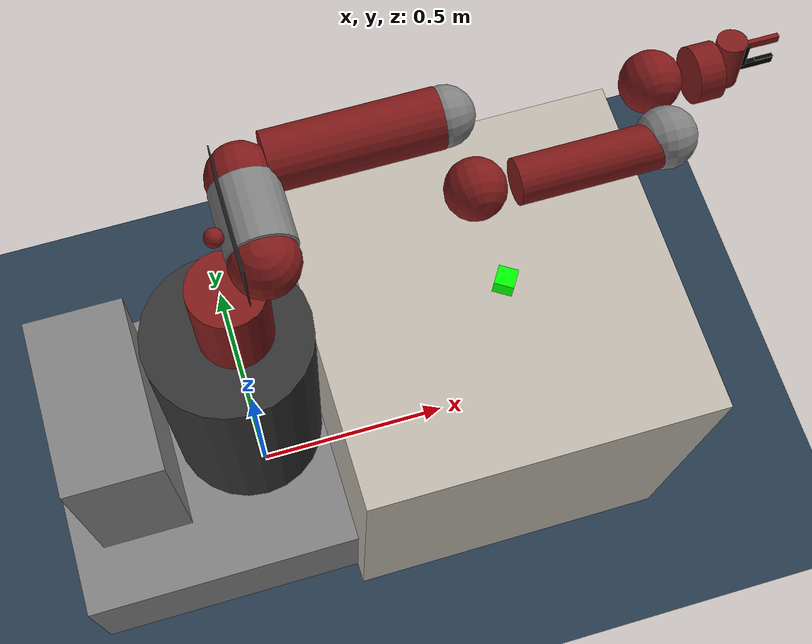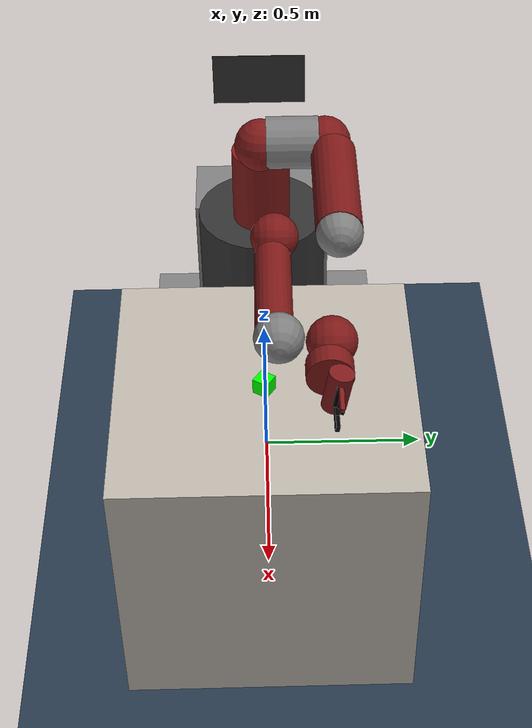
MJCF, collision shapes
<mujoco model="base">
    <compiler angle="radian" meshdir="meshes/" />
    <option impratio="20" cone="elliptic" />
    <size njmax="5000" nconmax="5000" />
    <asset>
        <texture type="skybox" builtin="gradient" rgb1="0.9 0.9 1" rgb2="0.2 0.3 0.4" width="256" height="1536" />
        <texture type="2d" name="texplane" builtin="checker" rgb1="0.2 0.3 0.4" rgb2="0.1 0.15 0.2" width="512" height="512" />
        <texture type="2d" name="tex-lego" file="{base}/mujoco/assets/arenas/../textures/lego.png" />
        <material name="floorplane" texture="texplane" texuniform="true" reflectance="0.5" />
        <material name="lego" texture="tex-lego" texuniform="true" texrepeat="10 10" reflectance="0.7" />
        <mesh name="pedestal" file="{base}/mujoco/assets/robots/sawyer/meshes/pedestal.stl" />
        <mesh name="base" file="{base}/mujoco/assets/robots/sawyer/meshes/base.stl" />
        <mesh name="l0" file="{base}/mujoco/assets/robots/sawyer/meshes/l0.stl" />
        <mesh name="head" file="{base}/mujoco/assets/robots/sawyer/meshes/head.stl" />
        <mesh name="l1" file="{base}/mujoco/assets/robots/sawyer/meshes/l1.stl" />
        <mesh name="l2" file="{base}/mujoco/assets/robots/sawyer/meshes/l2.stl" />
        <mesh name="l3" file="{base}/mujoco/assets/robots/sawyer/meshes/l3.stl" />
        <mesh name="l4" file="{base}/mujoco/assets/robots/sawyer/meshes/l4.stl" />
        <mesh name="l5" file="{base}/mujoco/assets/robots/sawyer/meshes/l5.stl" />
        <mesh name="l6" file="{base}/mujoco/assets/robots/sawyer/meshes/l6.stl" />
        <mesh name="electric_gripper_base" file="{base}/mujoco/assets/grippers/meshes/two_finger_gripper/electric_gripper_base.STL" />
        <mesh name="standard_narrow" file="{base}/mujoco/assets/grippers/meshes/two_finger_gripper/standard_narrow.STL" />
        <mesh name="half_round_tip" file="{base}/mujoco/assets/grippers/meshes/two_finger_gripper/half_round_tip.STL" />
    </asset>
    <worldbody>
        <geom name="floor" size="3 3 0.125" pos="0.56 0 0" type="plane" material="floorplane" />
        <camera name="frontview" pos="2.16 0 1.45" quat="0.56 0.43 0.43 0.56" />
        <camera name="birdview" pos="0.36 0 3" quat="0.7071 0 0 0.7071" />
        <camera name="agentview" pos="1.06 0 1.35" quat="0.653 0.271 0.271 0.653" />
        <light pos="1.56 1 4" dir="0 -0.14834 -0.988936" castshadow="false" diffuse="0.8 0.8 0.8" />
        <light pos="-2.44 -3 4" dir="0 -0.14834 -0.988936" castshadow="false" diffuse="0.8 0.8 0.8" />
        <body name="table" pos="0.56 0 0.4">
            <inertial pos="0 0 0" mass="1024" diaginertia="109.227 109.227 109.227" />
            <geom name="table_collision" size="0.4 0.4 0.4" type="box" material="lego" />
            <geom name="table_visual" size="0.4 0.4 0.4" type="box" contype="0" conaffinity="0" group="1" material="lego" />
            <site name="table_top" pos="0 0 0.4" size="0.001" rgba="0 0 0 0" />
        </body>
        <body name="base" pos="0 0 0.913">
            <inertial pos="0 0 0" mass="0" diaginertia="0 0 0" />
            <body name="controller_box" pos="0 0 0">
                <inertial pos="-0.325 0 -0.38" mass="46.64" diaginertia="1.71363 1.27988 0.809981" />
                <geom size="0.11 0.2 0.265" pos="-0.325 0 -0.38" type="box" />
            </body>
            <body name="pedestal_feet" pos="0 0 0">
                <inertial pos="-0.1225 0 -0.758" mass="167.09" diaginertia="8.16095 9.59375 15.0785" />
                <geom size="0.385 0.35 0.155" pos="-0.1225 0 -0.758" type="box" />
            </body>
            <body name="torso" pos="0 0 0">
                <inertial pos="0 0 0" mass="0.0001" diaginertia="1e-08 1e-08 1e-08" />
                <geom size="0.05 0.05 0.05" type="box" contype="0" conaffinity="0" group="1" rgba="0.2 0.2 0.2 1" />
            </body>
            <body name="pedestal" pos="0 0 0">
                <inertial pos="0 0 0" quat="0.659267 -0.259505 -0.260945 0.655692" mass="60.864" diaginertia="6.0869 5.81635 4.20915" />
                <geom pos="0.26 0.345 -0.91488" quat="0.5 0.5 -0.5 -0.5" type="mesh" contype="0" conaffinity="0" group="1" rgba="0.2 0.2 0.2 1" mesh="pedestal" />
                <geom size="0.18 0.31" pos="-0.02 0 -0.29" type="cylinder" rgba="0.2 0.2 0.2 1" />
            </body>
            <body name="right_arm_base_link" pos="0 0 0">
                <inertial pos="-0.0006241 -2.8025e-05 0.065404" quat="-0.209285 0.674441 0.227335 0.670558" mass="2.0687" diaginertia="0.00740351 0.00681776 0.00672942" />
                <geom type="mesh" contype="0" conaffinity="0" group="1" rgba="0.5 0.1 0.1 1" mesh="base" />
                <geom size="0.08 0.12" pos="0 0 0.12" type="cylinder" rgba="0.5 0.1 0.1 1" />
                <body name="right_l0" pos="0 0 0.08">
                    <inertial pos="0.024366 0.010969 0.14363" quat="0.894823 0.00899958 -0.170275 0.412573" mass="5.3213" diaginertia="0.0651588 0.0510944 0.0186218" />
                    <joint name="right_j0" pos="0 0 0" axis="0 0 1" limited="true" range="-3.0503 3.0503" />
                    <geom type="mesh" contype="0" conaffinity="0" group="1" rgba="0.5 0.1 0.1 1" mesh="l0" />
                    <geom size="0.07" pos="0.08 0 0.23" rgba="0.5 0.1 0.1 1" />
                    <body name="head" pos="0 0 0.2965">
                        <inertial pos="0.0053207 -2.6549e-05 0.1021" quat="0.999993 7.08405e-05 -0.00359857 -0.000626247" mass="1.5795" diaginertia="0.0118334 0.00827089 0.00496574" />
                        <joint name="head_pan" pos="0 0 0" axis="0 0 1" limited="true" range="-5.0952 0.9064" />
                        <geom type="mesh" contype="0" conaffinity="0" group="1" rgba="0.5 0.1 0.1 1" mesh="head" />
                        <geom size="0.018" pos="0 0 0.08" rgba="0.5 0.1 0.1 1" />
                        <body name="screen" pos="0.03 0 0.105" quat="0.5 0.5 0.5 0.5">
                            <inertial pos="0 0 0" mass="0.0001" diaginertia="1e-08 1e-08 1e-08" />
                            <geom size="0.12 0.07 0.001" type="box" contype="0" conaffinity="0" group="1" rgba="0.2 0.2 0.2 1" />
                            <geom size="0.001" rgba="0.2 0.2 0.2 1" />
                        </body>
                        <body name="head_camera" pos="0.0228027 0 0.216572" quat="0.342813 -0.618449 0.618449 -0.342813">
                            <inertial pos="0.0228027 0 0.216572" quat="0.342813 -0.618449 0.618449 -0.342813" mass="0" diaginertia="0 0 0" />
                        </body>
                    </body>
                    <body name="right_torso_itb" pos="-0.055 0 0.22" quat="0.707107 0 -0.707107 0">
                        <inertial pos="0 0 0" mass="0.0001" diaginertia="1e-08 1e-08 1e-08" />
                    </body>
                    <body name="right_l1" pos="0.081 0.05 0.237" quat="0.5 -0.5 0.5 0.5">
                        <inertial pos="-0.0030849 -0.026811 0.092521" quat="0.424888 0.891987 0.132364 -0.0794296" mass="4.505" diaginertia="0.0224339 0.0221624 0.0097097" />
                        <joint name="right_j1" pos="0 0 0" axis="0 0 1" limited="true" range="-3.8095 2.2736" />
                        <geom type="mesh" contype="0" conaffinity="0" group="1" rgba="0.5 0.1 0.1 1" mesh="l1" />
                        <geom size="0.07" pos="0 0 0.1225" rgba="0.5 0.1 0.1 1" />
                        <body name="right_l2" pos="0 -0.14 0.1425" quat="0.707107 0.707107 0 0">
                            <inertial pos="-0.00016044 -0.014967 0.13582" quat="0.707831 -0.0524761 0.0516007 0.702537" mass="1.745" diaginertia="0.0257928 0.025506 0.00292515" />
                            <joint name="right_j2" pos="0 0 0" axis="0 0 1" limited="true" range="-3.0426 3.0426" />
                            <geom type="mesh" contype="0" conaffinity="0" group="1" rgba="0.5 0.1 0.1 1" mesh="l2" />
                            <geom size="0.06 0.17" pos="0 0 0.08" type="cylinder" rgba="0.5 0.1 0.1 1" />
                            <body name="right_l3" pos="0 -0.042 0.26" quat="0.707107 -0.707107 0 0">
                                <inertial pos="-0.0048135 -0.0281 -0.084154" quat="0.902999 0.385391 -0.0880901 0.168247" mass="2.5097" diaginertia="0.0102404 0.0096997 0.00369622" />
                                <joint name="right_j3" pos="0 0 0" axis="0 0 1" limited="true" range="-3.0439 3.0439" />
                                <geom type="mesh" contype="0" conaffinity="0" group="1" rgba="0.5 0.1 0.1 1" mesh="l3" />
                                <geom size="0.06" pos="0 -0.01 -0.12" rgba="0.5 0.1 0.1 1" />
                                <body name="right_l4" pos="0 -0.125 -0.1265" quat="0.707107 0.707107 0 0">
                                    <inertial pos="-0.0018844 0.0069001 0.1341" quat="0.803612 0.031257 -0.0298334 0.593582" mass="1.1136" diaginertia="0.0136549 0.0135493 0.00127353" />
                                    <joint name="right_j4" pos="0 0 0" axis="0 0 1" limited="true" range="-2.9761 2.9761" />
                                    <geom type="mesh" contype="0" conaffinity="0" group="1" rgba="0.5 0.1 0.1 1" mesh="l4" />
                                    <geom size="0.045 0.15" pos="0 0 0.11" type="cylinder" rgba="0.5 0.1 0.1 1" />
                                    <body name="right_arm_itb" pos="-0.055 0 0.075" quat="0.707107 0 -0.707107 0">
                                        <inertial pos="0 0 0" mass="0.0001" diaginertia="1e-08 1e-08 1e-08" />
                                    </body>
                                    <body name="right_l5" pos="0 0.031 0.275" quat="0.707107 -0.707107 0 0">
                                        <inertial pos="0.0061133 -0.023697 0.076416" quat="0.404076 0.9135 0.0473125 0.00158335" mass="1.5625" diaginertia="0.00474131 0.00422857 0.00190672" />
                                        <joint name="right_j5" pos="0 0 0" axis="0 0 1" limited="true" range="-2.9761 2.9761" damping="0.2" />
                                        <geom type="mesh" contype="0" conaffinity="0" group="1" rgba="0.5 0.1 0.1 1" mesh="l5" />
                                        <geom size="0.06" pos="0 0 0.1" rgba="0.5 0.1 0.1 1" />
                                        <body name="right_hand_camera" pos="0.039552 -0.033 0.0695" quat="0.707107 0 0.707107 0">
                                            <inertial pos="0.039552 -0.033 0.0695" quat="0.707107 0 0.707107 0" mass="0" diaginertia="0 0 0" />
                                        </body>
                                        <body name="right_wrist" pos="0 0 0.10541" quat="0.707107 0.707107 0 0">
                                            <inertial pos="0 0 0.10541" quat="0.707107 0.707107 0 0" mass="0" diaginertia="0 0 0" />
                                        </body>
                                        <body name="right_l6" pos="0 -0.11 0.1053" quat="0.0616248 0.06163 -0.704416 0.704416">
                                            <inertial pos="-8.0726e-06 0.0085838 -0.0049566" quat="0.479044 0.515636 -0.513069 0.491322" mass="0.3292" diaginertia="0.000360258 0.000311068 0.000214974" />
                                            <joint name="right_j6" pos="0 0 0" axis="0 0 1" limited="true" range="-4.7124 4.7124" damping="0.1" />
                                            <geom type="mesh" contype="0" conaffinity="0" group="1" rgba="0.5 0.1 0.1 1" mesh="l6" />
                                            <geom size="0.055 0.025" pos="0 0.015 -0.01" type="cylinder" rgba="0.5 0.1 0.1 1" />
                                            <body name="right_hand" pos="0 0 0.0245" quat="0.707105 0 0 0.707108">
                                                <inertial pos="1e-08 1e-08 1e-08" quat="0.820473 0.339851 -0.17592 0.424708" mass="1e-08" diaginertia="1e-08 1e-08 1e-08" />
                                                <geom size="1e-08 5e-09" type="cylinder" />
                                                <body name="right_gripper_base" pos="0 0 0.025">
                                                    <inertial pos="0 0 0" quat="-0.5 0.5 0.5 0.5" mass="0.3" diaginertia="3e-08 2e-08 2e-08" />
                                                    <geom quat="0 0 0.707107 0.707107" type="mesh" contype="0" conaffinity="0" group="1" rgba="0.5 0.1 0.1 1" mesh="electric_gripper_base" />
                                                    <geom size="0.029 0.05" quat="0 0 0.707107 0.707107" type="cylinder" rgba="0.5 0.1 0.1 1" />
                                                    <body name="right_gripper" pos="0 0 0.095">
                                                        <inertial pos="0 0 0" mass="0.0001" diaginertia="0 0 0" />
                                                        <site name="grip_site" pos="0 0 0" size="0.01" group="1" rgba="0 0 0 0" />
                                                        <site name="grip_site_cylinder" pos="0 0 0" size="0.005 10" group="1" type="cylinder" rgba="0 0 0 0" />
                                                        <camera name="eye_in_hand" pos="0 0 0" quat="0 -1 1 0" fovy="75" />
                                                    </body>
                                                    <body name="r_gripper_l_finger" pos="0 0.01 0.02">
                                                        <inertial pos="0 0 0" quat="0 0 0 -1" mass="0.02" diaginertia="0.01 0.01 0.01" />
                                                        <joint name="r_gripper_l_finger_joint" pos="0 0 0" axis="0 1 0" type="slide" limited="true" range="-0.0115 0.020833" damping="100" />
                                                        <geom name="r_gripper_l_finger" quat="0 0 0 -1" type="mesh" contype="0" conaffinity="0" group="1" rgba="0 0 0 1" mesh="standard_narrow" />
                                                        <geom name="l_finger_g0" size="0.005 0.00675 0.0375" pos="0 0.01725 0.04" quat="0 0 0 -1" type="box" contype="0" friction="0 0 0" rgba="0 0 0 1" />
                                                        <geom name="l_finger_g1" size="0.005 0.025 0.0085" pos="-0.005 -0.003 0.0083" quat="0 0 0 -1" type="box" contype="0" friction="0 0 0" rgba="0 0 0 1" />
                                                        <body name="r_gripper_l_finger_tip" pos="0 0.01725 0.075">
                                                            <inertial pos="0 0 0" quat="0 0 0 1" mass="0.01" diaginertia="0.01 0.01 0.01" />
                                                            <geom quat="0 0 0 1" type="mesh" contype="0" conaffinity="0" group="1" rgba="0 0 0 1" mesh="half_round_tip" />
                                                            <geom name="l_fingertip_g0" size="0.004 0.004 0.0185" pos="0 -0.0045 -0.015" quat="0 0 0 1" type="box" contype="0" friction="0 0 0" rgba="0 0 0 1" />
                                                        </body>
                                                    </body>
                                                    <body name="r_gripper_r_finger" pos="0 -0.01 0.02">
                                                        <inertial pos="0 0 0" mass="0.02" diaginertia="0.01 0.01 0.01" />
                                                        <joint name="r_gripper_r_finger_joint" pos="0 0 0" axis="0 1 0" type="slide" limited="true" range="-0.020833 0.0115" damping="100" />
                                                        <geom name="r_gripper_r_finger" type="mesh" contype="0" conaffinity="0" group="1" rgba="0 0 0 1" mesh="standard_narrow" />
                                                        <geom name="r_finger_g0" size="0.005 0.00675 0.0375" pos="0 -0.01725 0.04" type="box" contype="0" friction="0 0 0" rgba="0.5 0.1 0.1 1" />
                                                        <geom name="r_finger_g1" size="0.005 0.025 0.0085" pos="0.005 0.003 0.0083" type="box" contype="0" friction="0 0 0" rgba="0 0 0 1" />
                                                        <body name="r_gripper_r_finger_tip" pos="0 -0.01725 0.075">
                                                            <inertial pos="0 0 0" mass="0.01" diaginertia="0.01 0.01 0.01" />
                                                            <geom type="mesh" contype="0" conaffinity="0" group="1" rgba="0 0 0 1" mesh="half_round_tip" />
                                                            <geom name="r_fingertip_g0" size="0.004 0.004 0.0185" pos="0 0.0045 -0.015" type="box" contype="0" friction="0 0 0" rgba="0 0 0 1" />
                                                        </body>
                                                    </body>
                                                </body>
                                            </body>
                                        </body>
                                    </body>
                                    <body name="right_l4_2" pos="0 0 0">
                                        <inertial pos="1e-08 1e-08 1e-08" quat="0.820473 0.339851 -0.17592 0.424708" mass="1e-08" diaginertia="1e-08 1e-08 1e-08" />
                                        <geom size="0.06" pos="0 0.01 0.26" />
                                    </body>
                                </body>
                            </body>
                            <body name="right_l2_2" pos="0 0 0">
                                <inertial pos="1e-08 1e-08 1e-08" quat="0.820473 0.339851 -0.17592 0.424708" mass="1e-08" diaginertia="1e-08 1e-08 1e-08" />
                                <geom size="0.06" pos="0 0 0.26" />
                            </body>
                        </body>
                        <body name="right_l1_2" pos="0 0 0">
                            <inertial pos="1e-08 1e-08 1e-08" quat="0.820473 0.339851 -0.17592 0.424708" mass="1e-08" diaginertia="1e-08 1e-08 1e-08" />
                            <geom size="0.07 0.07" pos="0 0 0.035" type="cylinder" />
                        </body>
                    </body>
                </body>
            </body>
        </body>
        <body name="cube" pos="0.587766 -0.00245723 0.822" quat="0.877583 0 0 0.479426">
            <inertial pos="0 0 0" mass="0.0170368" diaginertia="5.49721e-06 5.49721e-06 5.49721e-06" />
            <joint name="cube" type="free" />
            <geom name="cube" size="0.022 0.022 0.022" type="box" group="1" friction="2 0.005 0.0001" rgba="0 1 0 1" />
            <site name="cube" pos="0 0 0" size="0.002" rgba="1 0 0 1" />
        </body>
    </worldbody>
    <actuator>
        <general name="vel_right_j0" joint="right_j0" ctrllimited="true" ctrlrange="-1.74 1.74" biastype="affine" gainprm="8 0 0" biasprm="0 0 -8" />
        <general name="vel_right_j1" joint="right_j1" ctrllimited="true" ctrlrange="-1.328 1.328" biastype="affine" gainprm="7 0 0" biasprm="0 0 -7" />
        <general name="vel_right_j2" joint="right_j2" ctrllimited="true" ctrlrange="-1.957 1.957" biastype="affine" gainprm="6 0 0" biasprm="0 0 -6" />
        <general name="vel_right_j3" joint="right_j3" ctrllimited="true" ctrlrange="-1.957 1.957" biastype="affine" gainprm="4 0 0" biasprm="0 0 -4" />
        <general name="vel_right_j4" joint="right_j4" ctrllimited="true" ctrlrange="-3.485 3.485" biastype="affine" gainprm="2 0 0" biasprm="0 0 -2" />
        <general name="vel_right_j5" joint="right_j5" ctrllimited="true" ctrlrange="-3.485 3.485" biastype="affine" gainprm="0.5 0 0" biasprm="0 0 -0.5" />
        <general name="vel_right_j6" joint="right_j6" ctrllimited="true" ctrlrange="-4.545 4.545" biastype="affine" gainprm="0.1 0 0" biasprm="0 0 -0.1" />
        <general name="gripper_r_gripper_r_finger_joint" joint="r_gripper_r_finger_joint" ctrllimited="true" forcelimited="true" ctrlrange="-0.0115 0.020833" forcerange="-20 20" biastype="affine" gainprm="10000 0 0" biasprm="0 -10000 0" />
        <general name="gripper_r_gripper_l_finger_joint" joint="r_gripper_l_finger_joint" ctrllimited="true" forcelimited="true" ctrlrange="-0.020833 0.0115" forcerange="-20 20" biastype="affine" gainprm="10000 0 0" biasprm="0 -10000 0" />
    </actuator>
</mujoco>
